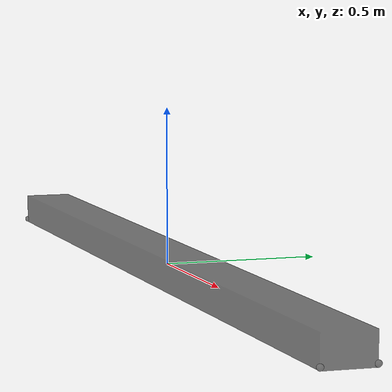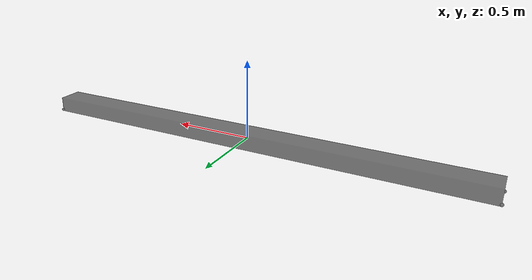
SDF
<?xml version="1.0"?>
<sdf version="1.7">
  <model name="block">
    <link name="block">
      <inertial>
        <pose>0 0 0 0 0 0</pose>
        <mass>.5</mass>
        <!-- Inertia values were calculated to be consistent with the mass and
             geometry size, assuming a uniform density. -->
        <inertia>
          <ixx>0.001483</ixx>
          <ixy>0</ixy>
          <ixz>0</ixz>
          <iyy>0.3754167</iyy>
          <iyz>0</iyz>
          <izz>0.3760667</izz>
        </inertia>
      </inertial>
      <visual name="block">
        <pose>0 0 0.0 0 0 0</pose>
        <geometry>
          <box>
            <size>3 0.16 0.1</size>
          </box>
        </geometry>
        <material>
          <diffuse>0.1 0.1 0.1 0.6</diffuse>
        </material>
      </visual>
      <collision name="block">
        <pose>0 0 0.0 0 0 0</pose>
        <geometry>
          <box>
            <size>3 0.16 0.1</size>
          </box>
        </geometry>
      </collision>
    </link>

    <link name="point_FR">
      <inertial>
        <mass>0.01</mass>
      </inertial>
      <visual name="point_FR">
        <pose>1.5 0.08 -0.040 0 0 0</pose>
        <geometry>
          <sphere>
            <radius>0.01</radius>
          </sphere>
        </geometry>
        <material>
          <diffuse>0.1 0.1 0.1 0.6</diffuse>
        </material>
      </visual>
      <collision name="point_FR">
        <pose>1.5 0.08 -0.040 0 0 0</pose>
        <geometry>
          <sphere>
            <radius>0.01</radius>
          </sphere>
        </geometry>
	<surface>
	  <friction>
	    <ode>
	      <mu>1.0</mu>
	      <mu2>1.0</mu2>
	    </ode>
	  </friction>
	</surface>
      </collision>
    </link>
    <joint name="joint_FR" type="fixed">
      <parent>block</parent>
      <child>point_FR</child>
    </joint>

    <link name="point_FL">
      <inertial>
        <mass>0.01</mass>
      </inertial>
      <visual name="point_FL">
        <pose>-1.5 0.08 -0.040 0 0 0</pose>
        <geometry>
          <sphere>
            <radius>0.01</radius>
          </sphere>
        </geometry>
        <material>
          <diffuse>0.1 0.1 0.1 0.6</diffuse>
        </material>
      </visual>
      <collision name="point_FL">
        <pose>-1.5 0.08 -0.040 0 0 0</pose>
        <geometry>
          <sphere>
            <radius>0.01</radius>
          </sphere>
        </geometry>
	<surface>
	  <friction>
	    <ode>
	      <mu>1.0</mu>
	      <mu2>1.0</mu2>
	    </ode>
	  </friction>
	</surface>
      </collision>
    </link>
    <joint name="joint_FL" type="fixed">
      <parent>block</parent>
      <child>point_FL</child>
    </joint>

    <link name="point_BR">
      <inertial>
        <mass>0.01</mass>
      </inertial>
      <visual name="point_BR">
        <pose>1.5 -0.08 -0.040 0 0 0</pose>
        <geometry>
          <sphere>
            <radius>0.01</radius>
          </sphere>
        </geometry>
        <material>
          <diffuse>0.1 0.1 0.1 0.6</diffuse>
        </material>
      </visual>
      <collision name="point_BR">
        <pose>1.5 -0.08 -0.040 0 0 0</pose>
        <geometry>
          <sphere>
            <radius>0.01</radius>
          </sphere>
        </geometry>
	<surface>
	  <friction>
	    <ode>
	      <mu>1.0</mu>
	      <mu2>1.0</mu2>
	    </ode>
	  </friction>
	</surface>
      </collision>
    </link>
    <joint name="joint_BR" type="fixed">
      <parent>block</parent>
      <child>point_BR</child>
    </joint>
    <link name="point_BL">
      <inertial>
        <mass>0.01</mass>
      </inertial>
      <visual name="point_BL">
        <pose>-1.5 -0.08 -0.040 0 0 0</pose>
        <geometry>
          <sphere>
            <radius>0.01</radius>
          </sphere>
        </geometry>
        <material>
          <diffuse>0.1 0.1 0.1 0.6</diffuse>
        </material>
      </visual>
      <collision name="point_BL">
        <pose>-1.5 -0.08 -0.040 0 0 0</pose>
        <geometry>
          <sphere>
            <radius>0.01</radius>
          </sphere>
        </geometry>
	<surface>
	  <friction>
	    <ode>
	      <mu>1.0</mu>
	      <mu2>1.0</mu2>
	    </ode>
	  </friction>
	</surface>
      </collision>
    </link>
    <joint name="joint_BL" type="fixed">
      <parent>block</parent>
      <child>point_BL</child>
    </joint>
  </model>
</sdf>
